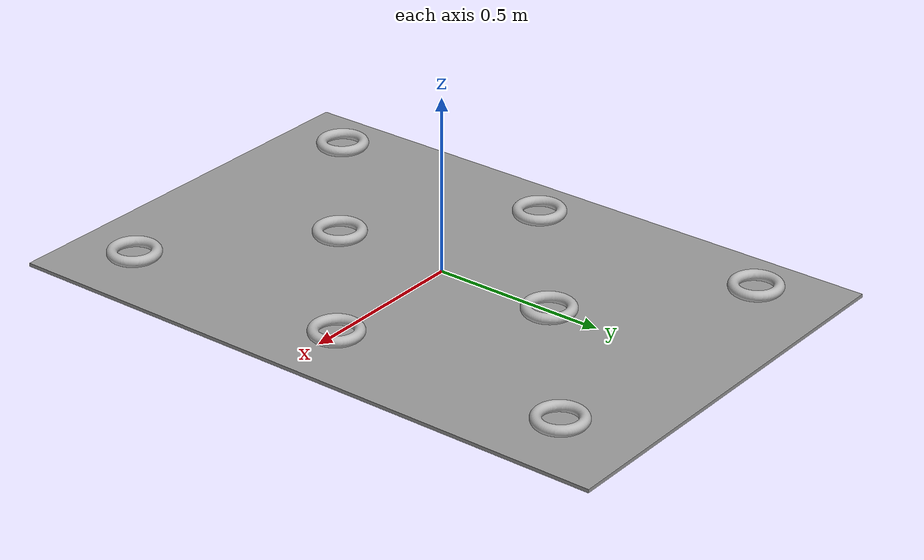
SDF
<?xml version="1.0"?>
<sdf version="1.6">
  <world name="toroid_world">

    <!-- Add sun (lighting) -->
    <include>
      <uri>model://sun</uri>
    </include>

    <!-- Custom ground plane -->
    <model name="arena_ground">
      <static>true</static>
      <link name="ground_link">
        <visual name="ground_visual">
          <geometry>
            <box>
              <size>1.219 1.828 0.01</size>
            </box>
          </geometry>
          <material>
            <script>
              <uri>file://media/materials/scripts/gazebo.material</uri>
              <name>Gazebo/Grey</name>
            </script>
          </material>
          <pose>0 0 -0.025 0 0 0</pose>
        </visual>
        <collision name="ground_collision">
          <geometry>
            <box>
              <size>1.219 1.828 0.01</size>
            </box>
          </geometry>
          <pose>0 0 -0.025 0 0 0</pose>
        </collision>
      </link>
    </model>

    <!-- Toroid 1 -->
    <include>
      <name>toroid_1</name>
      <uri>file:///home/ridhima/workspaces/surge/src/arena/models/toroid</uri>
      <pose>-0.43 0 0.01 0 0 0</pose>
    </include>

    <!-- Toroid 2 -->
    <include>
      <name>toroid_2</name>
      <uri>file:///home/ridhima/workspaces/surge/src/arena/models/toroid</uri>
      <pose>-0.43 0.7 0.01 0 0 0</pose>
    </include>

    <!-- Toroid 3 -->
    <include>
      <name>toroid_3</name>
      <uri>file:///home/ridhima/workspaces/surge/src/arena/models/toroid</uri>
      <pose>-0.43 -0.7 0.01 0 0 0</pose>
    </include>

    <!-- Toroid 4 -->
    <include>
      <name>toroid_4</name>
      <uri>file:///home/ridhima/workspaces/surge/src/arena/models/toroid</uri>
      <pose>0 0.35 0.01 0 0 0</pose>
    </include>

    <!-- Toroid 5 -->
    <include>
      <name>toroid_5</name>
      <uri>file:///home/ridhima/workspaces/surge/src/arena/models/toroid</uri>
      <pose>0 -0.35 0.01 0 0 0</pose>
    </include>

    <!-- Toroid 6 -->
    <include>
      <name>toroid_6</name>
      <uri>file:///home/ridhima/workspaces/surge/src/arena/models/toroid</uri>
      <pose>0.43 0.7 0.01 0 0 0</pose>
    </include>

    <!-- Toroid 7 -->
    <include>
      <name>toroid_7</name>
      <uri>file:///home/ridhima/workspaces/surge/src/arena/models/toroid</uri>
      <pose>0.43 0 0.01 0 0 0</pose>
    </include>

    <!-- Toroid 8 -->
    <include>
      <name>toroid_8</name>
      <uri>file:///home/ridhima/workspaces/surge/src/arena/models/toroid</uri>
      <pose>0.43 -0.7 0.01 0 0 0</pose>
    </include>

  </world>
</sdf>

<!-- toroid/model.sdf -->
<sdf version="1.6">
  <model name="toroid">
    <static>true</static>
    <link name="link">
      <visual name="visual">
        <geometry>
          <mesh>
            <uri>file:///home/ridhima/workspaces/surge/src/arena/models/toroid/meshes/toroid.stl</uri>
            <scale>1.5 1.5 1.5</scale>
          </mesh>
        </geometry>
      </visual>
      <collision name="collision">
        <geometry>
          <mesh>
            <uri>file:///home/ridhima/workspaces/surge/src/arena/models/toroid/meshes/toroid.stl</uri>
            <scale>1.5 1.5 1.5</scale>
          </mesh>
        </geometry>
      </collision>
    </link>
  </model>
</sdf>
